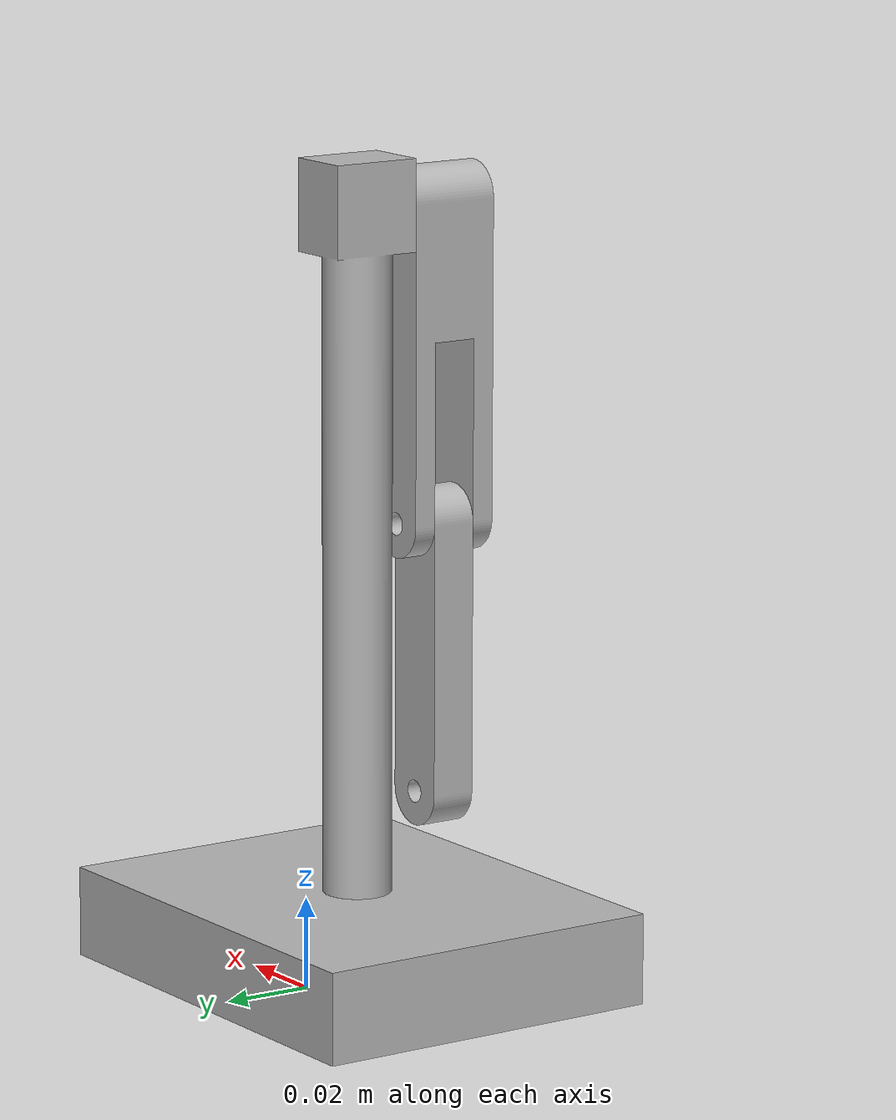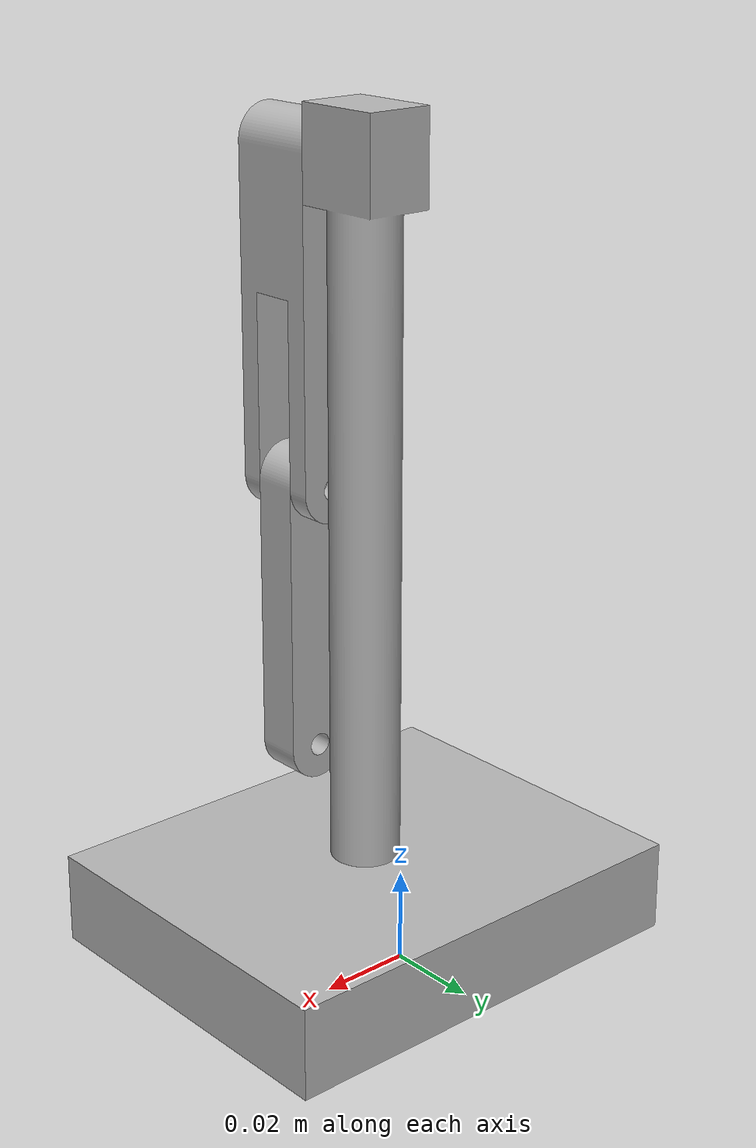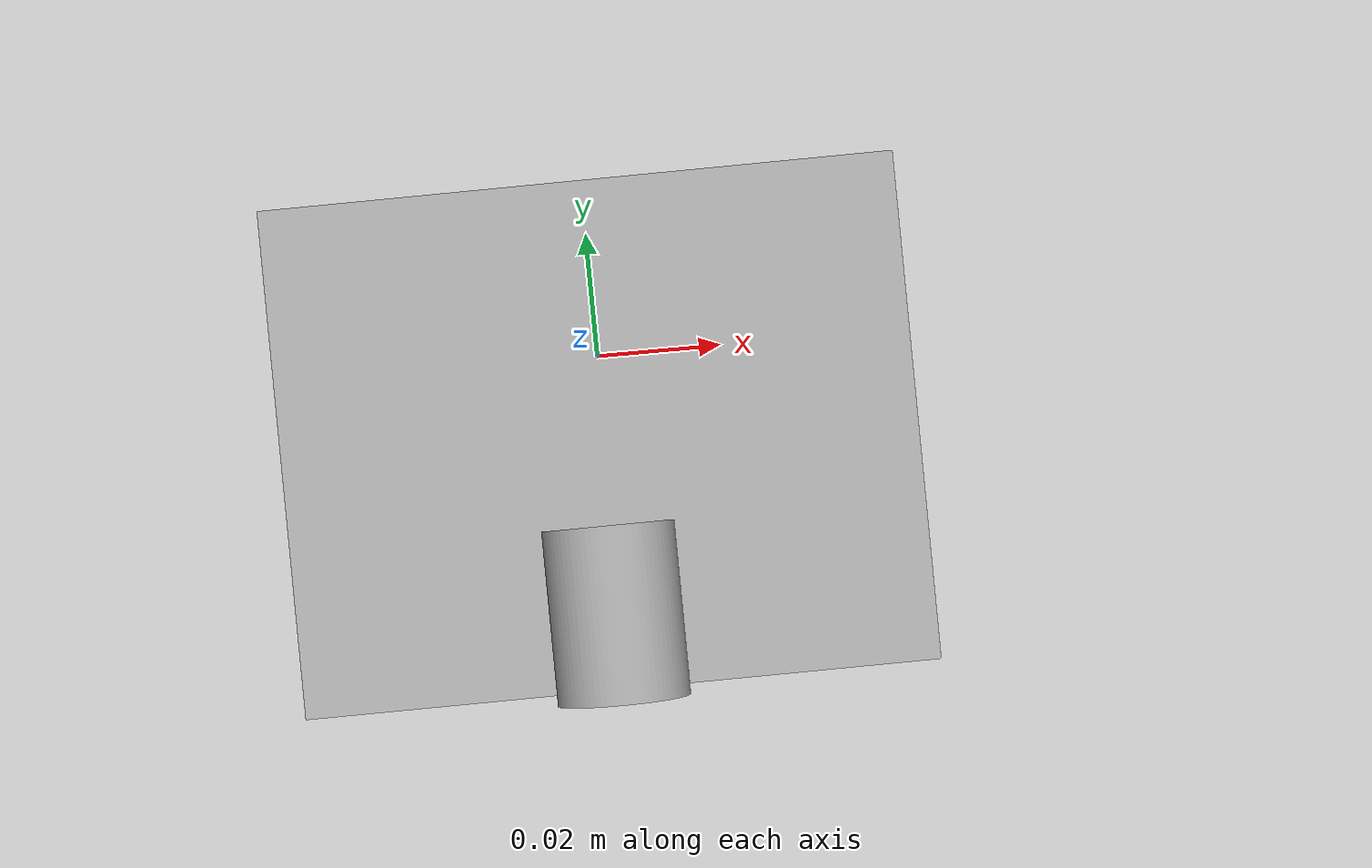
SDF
<sdf version='1.7'>
  <model name='titanleg'>
    <link name='base'>
      <inertial>
        <pose>-0.001033 -0.012681 0.025838 0 -0 0</pose>
        <mass>0.238916</mass>
        <inertia>
          <ixx>0.000508539</ixx>
          <ixy>0</ixy>
          <ixz>0</ixz>
          <iyy>0.000568218</iyy>
          <iyz>1.4166e-06</iyz>
          <izz>0.000274807</izz>
        </inertia>
      </inertial>
      <collision name='base_collision'>
        <pose>-0.001033 -0.01264 0.000132 0 -0 0</pose>
        <geometry>
          <mesh>
            <scale>1 1 1</scale>
            <uri>model://titanleg_gazebo/meshes/base.stl</uri>
          </mesh>
        </geometry>
      </collision>
      <visual name='base_visual'>
        <pose>-0.001033 -0.01264 0.000132 0 -0 0</pose>
        <geometry>
          <mesh>
            <scale>1 1 1</scale>
            <uri>model://titanleg_gazebo/meshes/base.stl</uri>
          </mesh>
        </geometry>
      </visual>
    </link>
    <joint name='upleg' type='revolute'>
      <pose relative_to='base'>-0.001033 -0.02264 0.170132 -1.5708 -0 -0</pose>
      <parent>base</parent>
      <child>upperleg</child>
      <axis>
        <xyz>0 0 1</xyz>
        <limit>
          <lower>0</lower>
          <upper>6.28319</upper>
          <effort>1</effort>
          <velocity>20</velocity>
        </limit>
        <dynamics>
          <spring_reference>0</spring_reference>
          <spring_stiffness>0</spring_stiffness>
        </dynamics>
      </axis>
    </joint>
    <link name='upperleg'>
      <pose relative_to='upleg'>0 0 0 0 -0 0</pose>
      <inertial>
        <pose>0 0.02815 -0.01 0 -0 0</pose>
        <mass>0.0213271</mass>
        <inertia>
          <ixx>1.18912e-05</ixx>
          <ixy>-1.62319e-38</ixy>
          <ixz>3.12908e-37</ixz>
          <iyy>1.31689e-06</iyy>
          <iyz>3.89483e-38</iyz>
          <izz>1.13683e-05</izz>
        </inertia>
      </inertial>
      <collision name='upperleg_collision'>
        <pose>0 0 0 1.5708 -0 0</pose>
        <geometry>
          <mesh>
            <scale>1 1 1</scale>
            <uri>model://titanleg_gazebo/meshes/upperleg.stl</uri>
          </mesh>
        </geometry>
      </collision>
      <visual name='upperleg_visual'>
        <pose>0 0 0 1.5708 -0 0</pose>
        <geometry>
          <mesh>
            <scale>1 1 1</scale>
            <uri>model://titanleg_gazebo/meshes/upperleg.stl</uri>
          </mesh>
        </geometry>
      </visual>
    </link>
    <joint name='lowleg' type='revolute'>
      <pose relative_to='upperleg'>-0 0.07 -0.015 -3.14159 0 -0</pose>
      <parent>upperleg</parent>
      <child>lowerleg</child>
      <axis>
        <xyz>0 0 1</xyz>
        <limit>
          <lower>-2.61799</lower>
          <upper>2.61799</upper>
          <effort>1</effort>
          <velocity>20</velocity>
        </limit>
        <dynamics>
          <spring_reference>0</spring_reference>
          <spring_stiffness>0</spring_stiffness>
        </dynamics>
      </axis>
    </joint>
    <link name='lowerleg'>
      <pose relative_to='lowleg'>0 0 0 0 -0 0</pose>
      <inertial>
        <pose>-0 -0.03 -0.005 0 -0 0</pose>
        <mass>0.0129681</mass>
        <inertia>
          <ixx>5.48149e-06</ixx>
          <ixy>4.30546e-39</ixy>
          <ixz>2.1924e-39</ixz>
          <iyy>3.49301e-07</iyy>
          <iyz>3.94777e-40</iyz>
          <izz>5.61466e-06</izz>
        </inertia>
      </inertial>
      <collision name='lowerleg_collision'>
        <pose>-0 -0.03 -0.01 -1.5708 -0 -0</pose>
        <geometry>
          <mesh>
            <scale>1 1 1</scale>
            <uri>model://titanleg_gazebo/meshes/lowerleg.stl</uri>
          </mesh>
        </geometry>
      </collision>
      <visual name='lowerleg_visual'>
        <pose>-0 -0.03 -0.01 -1.5708 -0 -0</pose>
        <geometry>
          <mesh>
            <scale>1 1 1</scale>
            <uri>model://titanleg_gazebo/meshes/lowerleg.stl</uri>
          </mesh>
        </geometry>
      </visual>
    </link>
    <static>0</static>
    <plugin name='gazebo_ros2_control' filename='libgazebo_ros2_control.so'>
      <parameters>$(find simulation_gazebo)/config/titanleg.yaml</parameters>
      <robot_param>robot_description</robot_param>
      <robot_param_node>robot_state_publisher</robot_param_node>
      <controller_manager_name>controller_manager</controller_manager_name>
    </plugin>
  </model>
</sdf>
